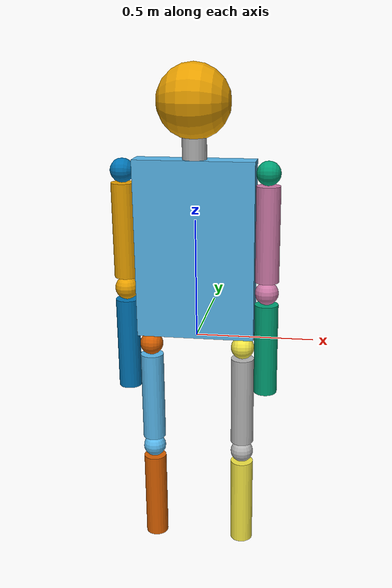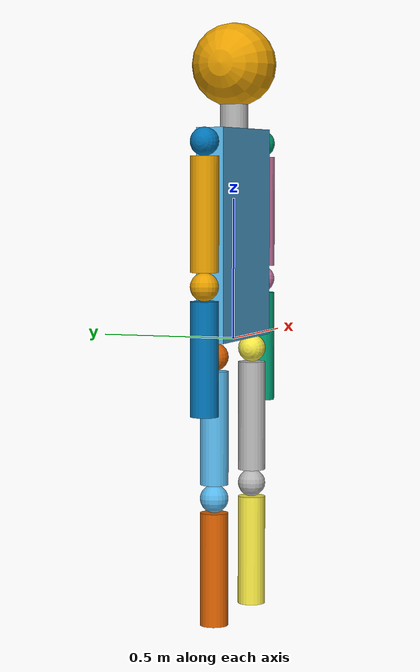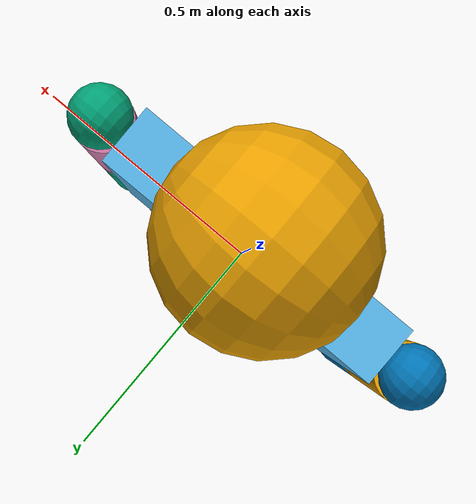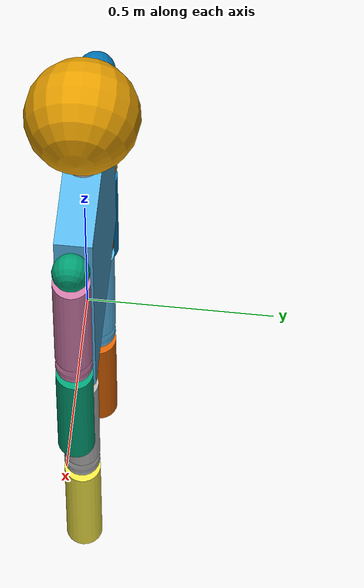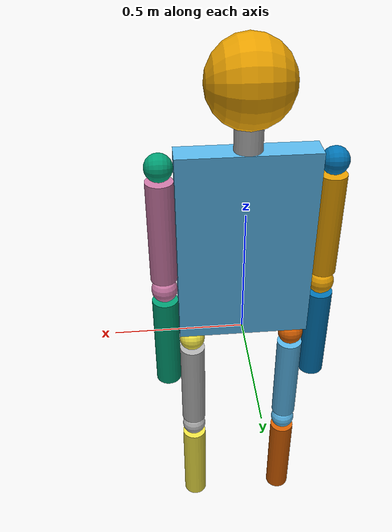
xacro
<?xml version="1.0"?>

<robot xmlns:sensor="http://playerstage.sourceforge.net/gazebo/xmlschema/#sensor"
	xmlns:controller="http://playerstage.sourceforge.net/gazebo/xmlschema/#controller"
	xmlns:interface="http://playerstage.sourceforge.net/gazebo/xmlschema/#interface"
	xmlns:xacro="http://ros.org/wiki/xacro" name="kin">

	<xacro:property name="pi" value="3.1415" />

	<xacro:macro name="default_inertial" params="mass">
		<inertial>
			<mass value="${mass}" />
			<inertia ixx="1.0" ixy="0.0" ixz="0.0" iyy="1.0" iyz="0.0"
				izz="1.0" />
		</inertial>
	</xacro:macro>

	<xacro:macro name="up" params="prefix suffix reflect">
		<link name="${prefix}_${suffix}_up">
			<visual>
				<origin xyz="0 0 ${reflect*0.25}" rpy="0 0 0" />

				<geometry>
					<cylinder radius="0.05" length="0.4" />
				</geometry>

			</visual>
			<collision>
				<geometry>
					<cylinder radius="0.05" length="0.4" />
				</geometry>
			</collision>
			<xacro:default_inertial mass="5" />
		</link>

	</xacro:macro>

	<xacro:macro name="down" params="prefix suffix reflect">
		<link name="${prefix}_${suffix}_down">
			<visual>
				<origin xyz="0 ${reflect*0.25} 0" rpy="${pi/2} 0 0" />

				<geometry>
					<cylinder radius="0.05" length="0.4" />
				</geometry>

			</visual>
			<collision>

				<geometry>
					<cylinder radius="0.05" length="0.4" />
				</geometry>
			</collision>
			<xacro:default_inertial mass="5" />
		</link>

	</xacro:macro>

	<xacro:macro name="joint_up" params="prefix suffix reflect reflect1 reflect2">
		<link name="${prefix}_${suffix}_joint1">
			<visual>
				<origin xyz="-0.05 0 0" rpy="0 0 0" />

				<geometry>
					<sphere radius="0.05" />
				</geometry>

			</visual>
			<collision>
				<geometry>
					<sphere radius="0.05" />
				</geometry>
			</collision>
			<xacro:default_inertial mass="1" />
		</link>

		<joint name="${prefix}_${suffix}_joint1" type="fixed">

			<parent link="torso" />
			<child link="${prefix}_${suffix}_joint1" />
			<origin xyz="${0.75*reflect1} 0 ${0.3*reflect+0.2*reflect2}"
				rpy="0 0 0" />
		</joint>

	</xacro:macro>

	<xacro:macro name="joint_down" params="prefix suffix reflect">
		<link name="${prefix}_${suffix}_joint2">
			<visual>
				<origin xyz="0 0 0" rpy="0 0 0" />

				<geometry>
					<sphere radius="0.05" />
				</geometry>

			</visual>
			<collision>
				<geometry>
					<sphere radius="0.05" />
				</geometry>
			</collision>
			<xacro:default_inertial mass="1" />
		</link>

		<joint name="${prefix}_${suffix}_joint2" type="fixed">

			<parent link="${prefix}_${suffix}_up" />
			<child link="${prefix}_${suffix}_joint2" />
			<origin xyz="0 0 ${0.5*reflect}" rpy="0 0 0" />
		</joint>

	</xacro:macro>

	<xacro:macro name="up_Z" params="prefix suffix reflect reflect1 reflect2">
		<joint name="${prefix}_${suffix}_Z" type="continuous">
			<axis xyz="0 0 ${1-2*reflect}" />
			<parent link="torso" />
			<child link="${prefix}_${suffix}_1" />
			<origin
				xyz="${0.75*reflect1-0.05} 0 ${0.2-0.6*reflect+0.1*reflect1+0.2*reflect2}"
				rpy="${reflect*pi} 0 ${pi/2}" />

		</joint>

	</xacro:macro>

	<xacro:macro name="up_Y" params="prefix suffix reflect">
		<joint name="${prefix}_${suffix}_Y" type="continuous">
			<axis xyz="0 0 ${1*reflect}" />
			<parent link="${prefix}_${suffix}_1" />
			<child link="${prefix}_${suffix}_2" />
			<origin xyz="0 0 0" rpy="-${pi/2} 0 ${pi/2}" />

		</joint>

	</xacro:macro>

	<xacro:macro name="up_X" params="prefix suffix reflect">
		<joint name="${prefix}_${suffix}_X" type="continuous">
			<axis xyz="0 0 ${1*reflect}" />
			<parent link="${prefix}_${suffix}_2" />
			<child link="${prefix}_${suffix}_up" />
			<origin xyz="0 0 0" rpy="-${pi/2} 0 -${pi/2} " />
		</joint>

	</xacro:macro>

	<xacro:macro name="downZ" params="prefix suffix reflect suffix1">
		<joint name="${prefix}_${suffix}" type="continuous">
			<axis xyz="0 0 ${1*reflect}" />
			<parent link="${prefix}_${suffix1}_up" />
			<child link="${prefix}_${suffix1}_down" />
			<origin xyz="0 0 ${0.5*reflect}" rpy="${pi/2} 0 ${pi/2}" />
		</joint>

	</xacro:macro>

	<xacro:macro name="end" params="prefix suffix reflect">
		<joint name="${prefix}_${suffix}_end" type="fixed">

			<parent link="${prefix}_${suffix}_down" />
			<child link="${prefix}_${suffix}_end" />
			<origin xyz="0 ${reflect*0.45} 0" rpy="0 0 ${pi/2}" />
		</joint>

	</xacro:macro>

	<link name="base_link" />
	<link name="torso_1" />
	<link name="torso_2" />

	<link name="left_shoulder_1" />
	<link name="left_shoulder_2" />
	<link name="left_shoulder_end" />

	<link name="right_shoulder_1" />
	<link name="right_shoulder_2" />
	<link name="right_shoulder_end" />

	<link name="left_hip_1" />
	<link name="left_hip_2" />
	<link name="left_hip_end" />

	<link name="right_hip_1" />
	<link name="right_hip_2" />
	<link name="right_hip_end" />

	<link name="neck">
		<visual>

			<origin xyz="0.075 0 0" rpy="0 1.57 0" />
			<geometry>
				<cylinder radius="0.05" length="0.15" />
			</geometry>

		</visual>
		<collision>
			<geometry>
				<cylinder radius="0.05" length="0.15" />
			</geometry>
		</collision>
		<xacro:default_inertial mass="2" />
	</link>

	<link name="head">
		<visual>
			<origin xyz="0.075 0 0" rpy="0 0 0" />
			<geometry>
				<sphere radius="0.15" />
			</geometry>

		</visual>
		<collision>
			<geometry>
				<sphere radius="0.15" />
			</geometry>
		</collision>
		<xacro:default_inertial mass="5" />
	</link>

	<link name="torso">

		<visual>

			<origin xyz="0.375 0 0" rpy="0 0 0" />
			<geometry>
				<box size="0.75 0.1 0.5" />
			</geometry>
		</visual>

		<collision>
			<geometry>
				<box size="0.75 0.1 0.5" />
			</geometry>
		</collision>
		<xacro:default_inertial mass="20" />

	</link>

	<joint name="torsoZ" type="continuous">
		<parent link="base_link" />
		<child link="torso_1" />
		<origin xyz="0 0 0" rpy="0 0 0" />
		<axis xyz="0 0 1" />
	</joint>

	<joint name="torsoY" type="continuous">
		<parent link="torso_1" />
		<child link="torso_2" />
		<origin xyz="0 0 0" rpy="-${pi/2} 0 0" />
		<axis xyz="0 0 1" />
	</joint>

	<joint name="torsoX" type="continuous">

		<parent link="torso_2" />
		<child link="torso" />
		<origin xyz="0 0 0" rpy="-${pi/2} 0 -${pi/2}" />
		<axis xyz="0 0 1" />
	</joint>

	<joint name="torso_neck" type="fixed">
		<parent link="torso" />
		<child link="neck" />
		<origin xyz="0.75 0 0" rpy="0 0 0" />

	</joint>

	<joint name="neck_head" type="fixed">
		<parent link="neck" />
		<child link="head" />
		<origin xyz="0.15 0 0" rpy="0 0 0" />

	</joint>

	<xacro:up_Z prefix="left" suffix="shoulder" reflect="0"
		reflect1="1" reflect2="0" />
	<xacro:up_Z prefix="left" suffix="hip" reflect="0" reflect1="0"
		reflect2="0" />
	<xacro:up_Z prefix="right" suffix="shoulder" reflect="1"
		reflect1="1" reflect2="0" />
	<xacro:up_Z prefix="right" suffix="hip" reflect="1"
		reflect1="0" reflect2="1" />

	<xacro:up_Y prefix="left" suffix="shoulder" reflect="1" />
	<xacro:up_Y prefix="left" suffix="hip" reflect="1" />
	<xacro:up_Y prefix="right" suffix="shoulder" reflect="-1" />
	<xacro:up_Y prefix="right" suffix="hip" reflect="-1" />

	<xacro:up_X prefix="left" suffix="shoulder" reflect="1" />
	<xacro:up_X prefix="left" suffix="hip" reflect="1" />
	<xacro:up_X prefix="right" suffix="shoulder" reflect="1" />
	<xacro:up_X prefix="right" suffix="hip" reflect="1" />

	<xacro:down prefix="left" suffix="shoulder" reflect="1" />
	<xacro:down prefix="left" suffix="hip" reflect="1" />
	<xacro:down prefix="right" suffix="shoulder" reflect="-1" />
	<xacro:down prefix="right" suffix="hip" reflect="-1" />

	<xacro:up prefix="left" suffix="shoulder" reflect="1" />
	<xacro:up prefix="left" suffix="hip" reflect="1" />
	<xacro:up prefix="right" suffix="shoulder" reflect="-1" />
	<xacro:up prefix="right" suffix="hip" reflect="-1" />

	<xacro:downZ prefix="left" suffix="elbow" reflect="1"
		suffix1="shoulder" />
	<xacro:downZ prefix="left" suffix="knee" reflect="1"
		suffix1="hip" />
	<xacro:downZ prefix="right" suffix="elbow" reflect="-1"
		suffix1="shoulder" />
	<xacro:downZ prefix="right" suffix="knee" reflect="-1"
		suffix1="hip" />

	<xacro:end prefix="left" suffix="shoulder" reflect="1" />
	<xacro:end prefix="left" suffix="hip" reflect="1" />
	<xacro:end prefix="right" suffix="shoulder" reflect="-1" />
	<xacro:end prefix="right" suffix="hip" reflect="-1" />

	<xacro:joint_up prefix="left" suffix="shoulder" reflect="1"
		reflect1="1" reflect2="0" />

	<xacro:joint_up prefix="left" suffix="hip" reflect="0"
		reflect1="0" reflect2="1" />
	<xacro:joint_up prefix="right" suffix="shoulder"
		reflect="-1" reflect1="1" reflect2="0" />
	<xacro:joint_up prefix="right" suffix="hip" reflect="0"
		reflect1="0" reflect2="-1" />

	<xacro:joint_down prefix="left" suffix="shoulder"
		reflect="1" />
	<xacro:joint_down prefix="left" suffix="hip" reflect="1" />
	<xacro:joint_down prefix="right" suffix="shoulder"
		reflect="-1" />
	<xacro:joint_down prefix="right" suffix="hip" reflect="-1" />
</robot>
